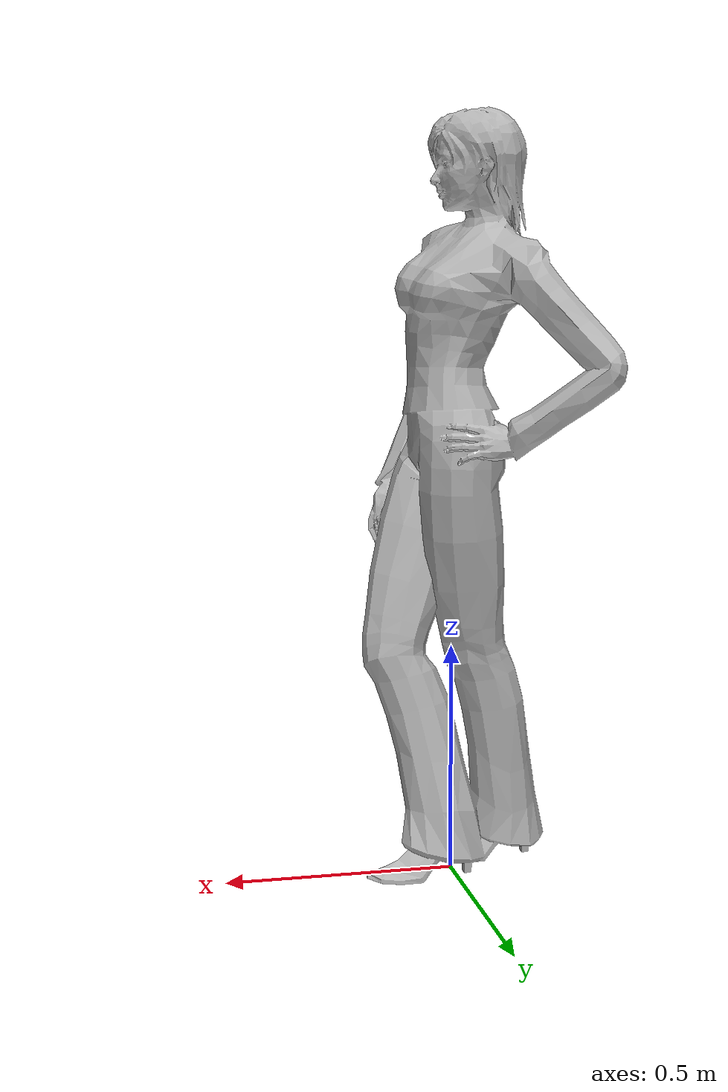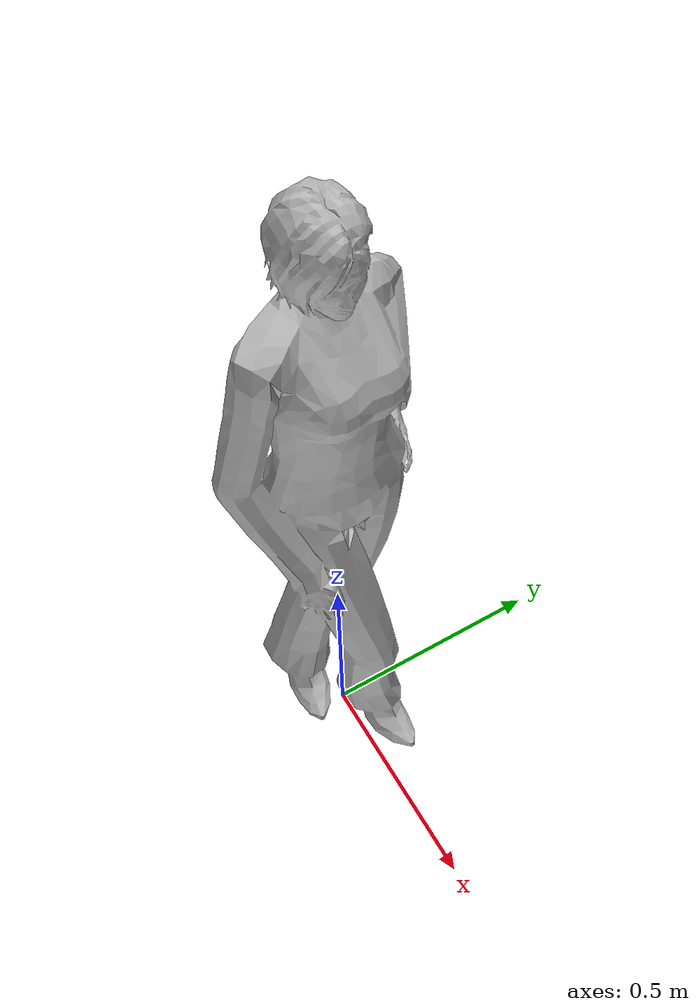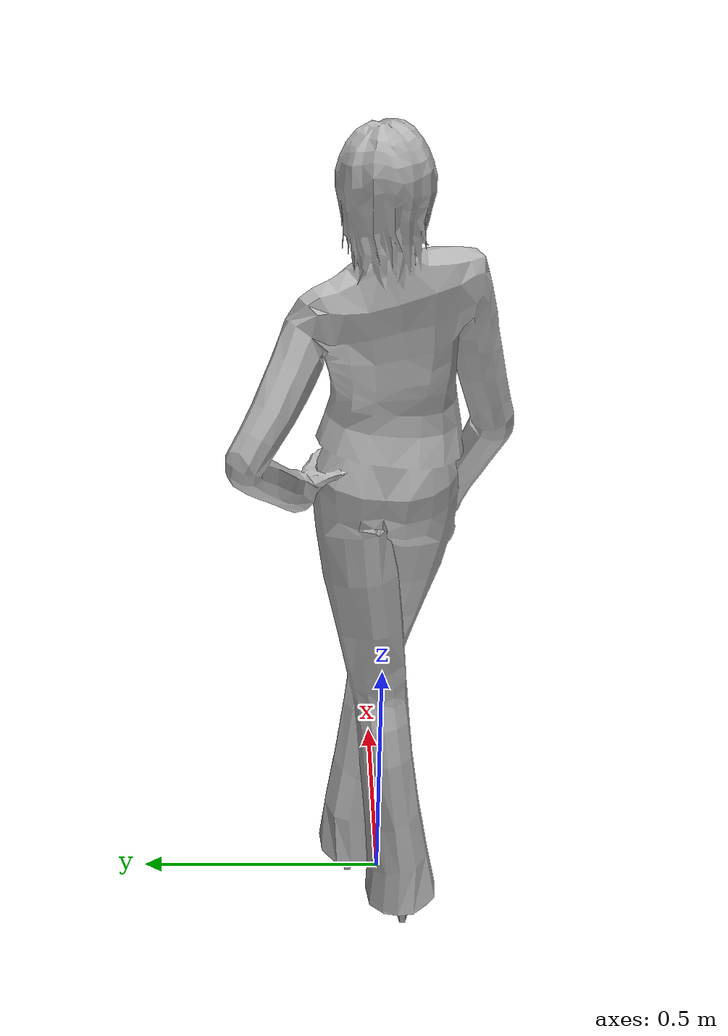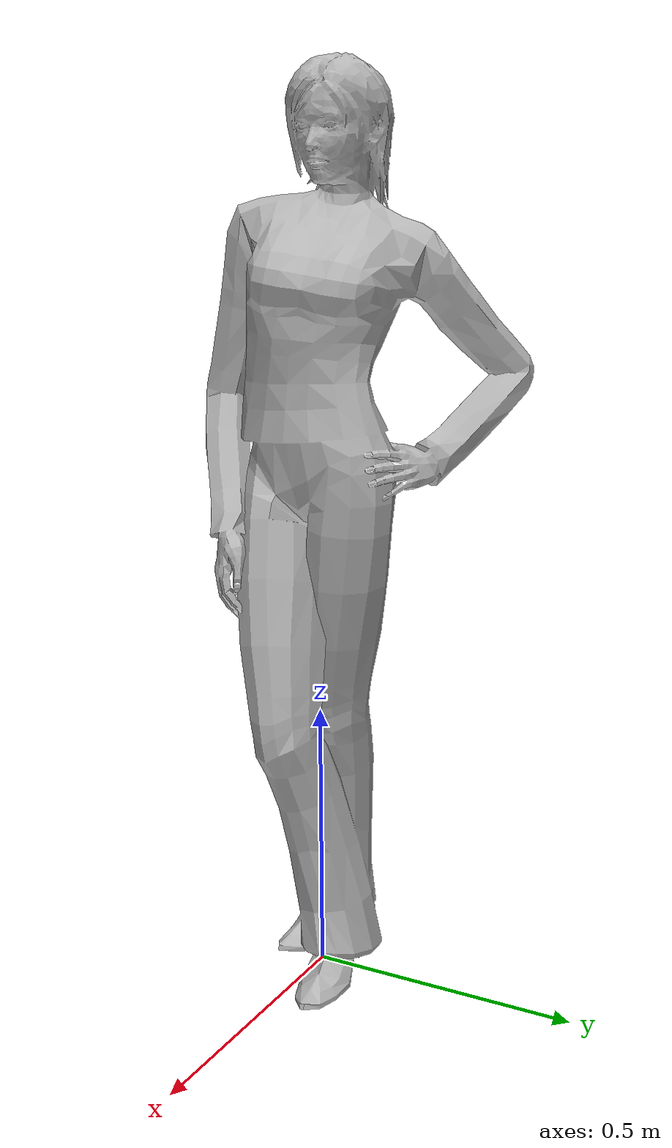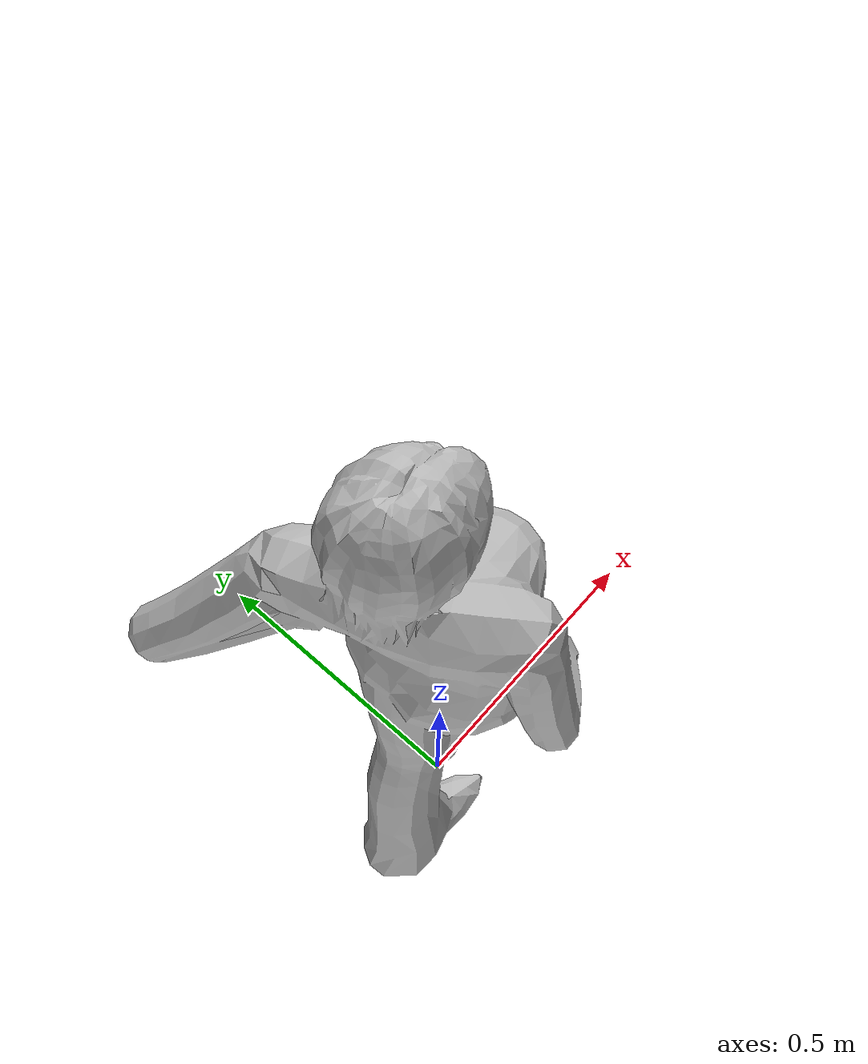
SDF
<?xml version="1.0" ?>

<sdf version="1.4">

 <model name="citizen_extras_female_03">

    <link name="link">

     <inertial>

       <mass>20</mass>

       <inertia>

         <ixx>0.0</ixx>

         <ixy>0.0</ixy>

         <ixz>0.0</ixz>

         <iyy>0.0</iyy>

         <iyz>0.0</iyz>

         <izz>0.0</izz>

       </inertia>

     </inertial>

     <collision name="collision">

       <pose>0 0 0 0 0 1.57</pose>

       <geometry>

         <mesh>

           <uri>model://citizen_extras_female_03/meshes/mesh.dae</uri>

         </mesh>

       </geometry>

     </collision>

     <visual name="visual">

       <pose>0 0 0 0 0 1.57</pose>

       <geometry>

         <mesh>

           <uri>model://citizen_extras_female_03/meshes/mesh.dae</uri>

         </mesh>

       </geometry>

     </visual>

    </link>

     <plugin name="human_drive" filename="libgazebo_ros_planar_move.so">
      <command_topic>cmd_vel</command_topic>
      <odometry_topic>odom</odometry_topic>
      <odometry_frame>odom</odometry_frame>
      <odometry_rate>20.0</odometry_rate>
      <robot_base_frame>link</robot_base_frame>
      <publish_odom>true</publish_odom>
      <publish_odom_tf>false</publish_odom_tf>
    </plugin>
 </model>
</sdf>
